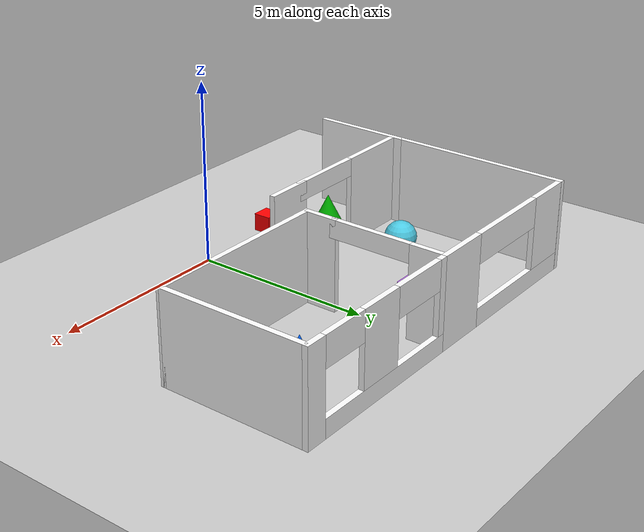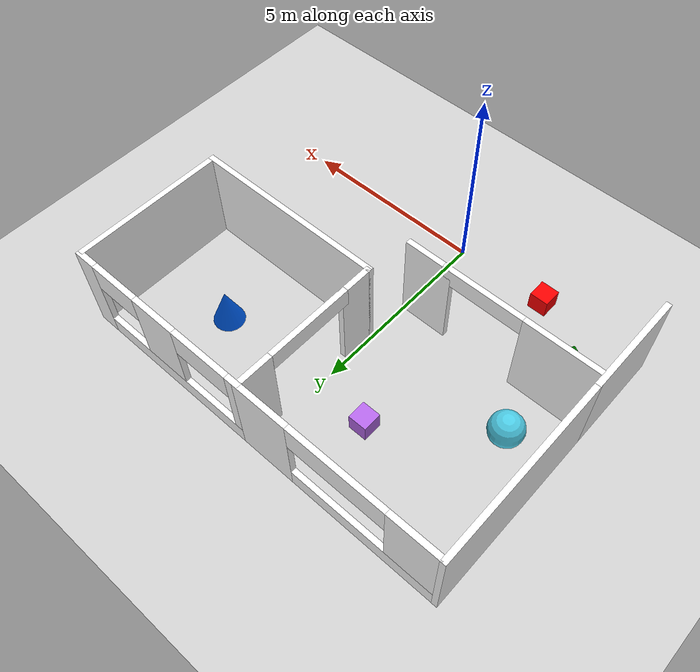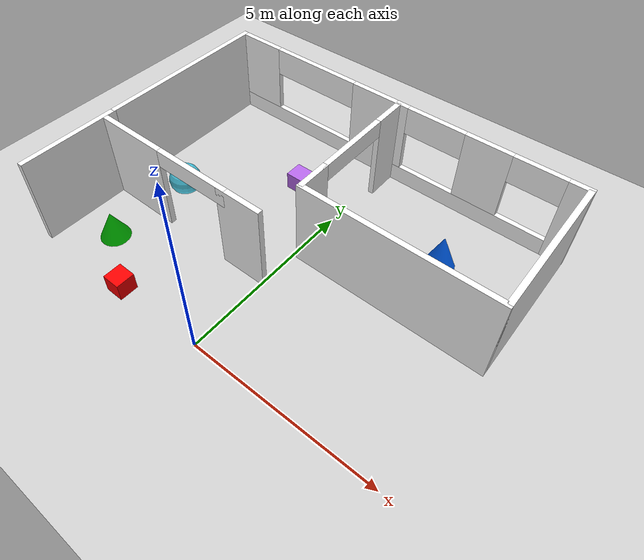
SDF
<sdf version="1.6">
 <world name="custom_world">
  <include><uri>https://fuel.gazebosim.org/1.0/OpenRobotics/models/Ground Plane</uri></include>
  <include><uri>https://fuel.gazebosim.org/1.0/OpenRobotics/models/Sun</uri></include>
  <model name="world_model">
   <pose>0 0 0 0 0 1.5708</pose>
   <link name="wall_1">
    <pose>5.07752 5.2688 0 0 -0 3.14159</pose>
    <visual name="wall_1_visual">
     <pose>0 0 1.25 0 -0 0</pose>
     <geometry><box><size>5 0.15 2.5</size></box></geometry>
     <material>
      <pbr><metal><albedo_map>textures/bricks.png</albedo_map></metal></pbr>
      <ambient>1 1 1 1</ambient>
      <diffuse>1 1 1 1</diffuse>
      <specular>0.2 0.2 0.2 1</specular>
      <emissive>0 0 0 1</emissive>
     </material>
    </visual>
    <collision name="wall_1_collision">
     <pose>0 0 1.25 0 -0 0</pose>
     <geometry><box><size>5 0.15 2.5</size></box></geometry>
     <surface>
      <friction>
       <ode><mu>1</mu><mu2>1</mu2><fdir1>0 0 0</fdir1><slip1>0</slip1><slip2>0</slip2></ode>
       <torsional>
        <coefficient>1</coefficient>
        <patch_radius>0</patch_radius>
        <surface_radius>0</surface_radius>
        <use_patch_radius>1</use_patch_radius>
        <ode><slip>0</slip></ode>
       </torsional>
      </friction>
      <bounce><restitution_coefficient>0</restitution_coefficient><threshold>1e+06</threshold></bounce>
      <contact>
       <collide_without_contact>0</collide_without_contact>
       <collide_without_contact_bitmask>1</collide_without_contact_bitmask>
       <collide_bitmask>1</collide_bitmask>
       <ode>
        <soft_cfm>0</soft_cfm>
        <soft_erp>0.2</soft_erp>
        <kp>1e+13</kp>
        <kd>1</kd>
        <max_vel>0.01</max_vel>
        <min_depth>0</min_depth>
       </ode>
       <bullet>
        <split_impulse>1</split_impulse>
        <split_impulse_penetration_threshold>-0.01</split_impulse_penetration_threshold>
        <soft_cfm>0</soft_cfm>
        <soft_erp>0.2</soft_erp>
        <kp>1e+13</kp>
        <kd>1</kd>
       </bullet>
      </contact>
     </surface>
    </collision>
   </link>
   <link name="wall_2">
    <pose>1.25 5.26876 0 0 -0 3.14159</pose>
    <visual name="wall_2_visual">
     <pose>0 0 1.25 0 -0 0</pose>
     <geometry><box><size>2.75 0.15 2.5</size></box></geometry>
     <material>
      <pbr><metal><albedo_map>textures/bricks.png</albedo_map></metal></pbr>
      <ambient>1 1 1 1</ambient>
      <diffuse>1 1 1 1</diffuse>
      <specular>0.2 0.2 0.2 1</specular>
      <emissive>0 0 0 1</emissive>
     </material>
    </visual>
    <collision name="wall_2_collision">
     <pose>0 0 1.25 0 -0 0</pose>
     <geometry><box><size>2.75 0.15 2.5</size></box></geometry>
     <surface>
      <friction>
       <ode><mu>1</mu><mu2>1</mu2><fdir1>0 0 0</fdir1><slip1>0</slip1><slip2>0</slip2></ode>
       <torsional>
        <coefficient>1</coefficient>
        <patch_radius>0</patch_radius>
        <surface_radius>0</surface_radius>
        <use_patch_radius>1</use_patch_radius>
        <ode><slip>0</slip></ode>
       </torsional>
      </friction>
      <bounce><restitution_coefficient>0</restitution_coefficient><threshold>1e+06</threshold></bounce>
      <contact>
       <collide_without_contact>0</collide_without_contact>
       <collide_without_contact_bitmask>1</collide_without_contact_bitmask>
       <collide_bitmask>1</collide_bitmask>
       <ode>
        <soft_cfm>0</soft_cfm>
        <soft_erp>0.2</soft_erp>
        <kp>1e+13</kp>
        <kd>1</kd>
        <max_vel>0.01</max_vel>
        <min_depth>0</min_depth>
       </ode>
       <bullet>
        <split_impulse>1</split_impulse>
        <split_impulse_penetration_threshold>-0.01</split_impulse_penetration_threshold>
        <soft_cfm>0</soft_cfm>
        <soft_erp>0.2</soft_erp>
        <kp>1e+13</kp>
        <kd>1</kd>
       </bullet>
      </contact>
     </surface>
    </collision>
   </link>
   <link name="wall_9">
    <pose>2.29994 2.5 0 0 0 -1.57091</pose>
    <visual name="wall_9_visual_1">
     <pose>-1.7 0 1.25 0 -0 0</pose>
     <geometry><box><size>2 0.15 2.5</size></box></geometry>
     <material>
      <pbr><metal><albedo_map>textures/bricks.png</albedo_map></metal></pbr>
      <ambient>1 1 1 1</ambient>
      <diffuse>1 1 1 1</diffuse>
      <specular>0.2 0.2 0.2 1</specular>
      <emissive>0 0 0 1</emissive>
     </material>
    </visual>
    <visual name="wall_9_visual_2">
     <pose>1.9 0 1.25 0 -0 0</pose>
     <geometry><box><size>1.3 0.15 2.5</size></box></geometry>
     <material>
      <pbr><metal><albedo_map>textures/bricks.png</albedo_map></metal></pbr>
      <ambient>1 1 1 1</ambient>
      <diffuse>1 1 1 1</diffuse>
      <specular>0.2 0.2 0.2 1</specular>
      <emissive>0 0 0 1</emissive>
     </material>
    </visual>
    <visual name="wall_9_visual_3">
     <pose>0.4 0 2.25 0 -0 0</pose>
     <geometry><box><size>2.2 0.15 0.5</size></box></geometry>
     <material>
      <pbr><metal><albedo_map>textures/bricks.png</albedo_map></metal></pbr>
      <ambient>1 1 1 1</ambient>
      <diffuse>1 1 1 1</diffuse>
      <specular>0.2 0.2 0.2 1</specular>
      <emissive>0 0 0 1</emissive>
     </material>
    </visual>
    <collision name="wall_9_collision_1">
     <pose>-1.7 0 1.25 0 -0 0</pose>
     <geometry><box><size>2 0.15 2.5</size></box></geometry>
     <surface>
      <friction>
       <ode><mu>1</mu><mu2>1</mu2><fdir1>0 0 0</fdir1><slip1>0</slip1><slip2>0</slip2></ode>
       <torsional>
        <coefficient>1</coefficient>
        <patch_radius>0</patch_radius>
        <surface_radius>0</surface_radius>
        <use_patch_radius>1</use_patch_radius>
        <ode><slip>0</slip></ode>
       </torsional>
      </friction>
      <bounce><restitution_coefficient>0</restitution_coefficient><threshold>1e+06</threshold></bounce>
      <contact>
       <collide_without_contact>0</collide_without_contact>
       <collide_without_contact_bitmask>1</collide_without_contact_bitmask>
       <collide_bitmask>1</collide_bitmask>
       <ode>
        <soft_cfm>0</soft_cfm>
        <soft_erp>0.2</soft_erp>
        <kp>1e+13</kp>
        <kd>1</kd>
        <max_vel>0.01</max_vel>
        <min_depth>0</min_depth>
       </ode>
       <bullet>
        <split_impulse>1</split_impulse>
        <split_impulse_penetration_threshold>-0.01</split_impulse_penetration_threshold>
        <soft_cfm>0</soft_cfm>
        <soft_erp>0.2</soft_erp>
        <kp>1e+13</kp>
        <kd>1</kd>
       </bullet>
      </contact>
     </surface>
    </collision>
    <collision name="wall_9_collision_2">
     <pose>1.9 0 1.25 0 -0 0</pose>
     <geometry><box><size>1.3 0.15 2.5</size></box></geometry>
     <surface>
      <friction>
       <ode><mu>1</mu><mu2>1</mu2><fdir1>0 0 0</fdir1><slip1>0</slip1><slip2>0</slip2></ode>
       <torsional>
        <coefficient>1</coefficient>
        <patch_radius>0</patch_radius>
        <surface_radius>0</surface_radius>
        <use_patch_radius>1</use_patch_radius>
        <ode><slip>0</slip></ode>
       </torsional>
      </friction>
      <bounce><restitution_coefficient>0</restitution_coefficient><threshold>1e+06</threshold></bounce>
      <contact>
       <collide_without_contact>0</collide_without_contact>
       <collide_without_contact_bitmask>1</collide_without_contact_bitmask>
       <collide_bitmask>1</collide_bitmask>
       <ode>
        <soft_cfm>0</soft_cfm>
        <soft_erp>0.2</soft_erp>
        <kp>1e+13</kp>
        <kd>1</kd>
        <max_vel>0.01</max_vel>
        <min_depth>0</min_depth>
       </ode>
       <bullet>
        <split_impulse>1</split_impulse>
        <split_impulse_penetration_threshold>-0.01</split_impulse_penetration_threshold>
        <soft_cfm>0</soft_cfm>
        <soft_erp>0.2</soft_erp>
        <kp>1e+13</kp>
        <kd>1</kd>
       </bullet>
      </contact>
     </surface>
    </collision>
    <collision name="wall_9_collision_3">
     <pose>0.4 0 2.25 0 -0 0</pose>
     <geometry><box><size>2.2 0.15 0.5</size></box></geometry>
     <surface>
      <friction>
       <ode><mu>1</mu><mu2>1</mu2><fdir1>0 0 0</fdir1><slip1>0</slip1><slip2>0</slip2></ode>
       <torsional>
        <coefficient>1</coefficient>
        <patch_radius>0</patch_radius>
        <surface_radius>0</surface_radius>
        <use_patch_radius>1</use_patch_radius>
        <ode><slip>0</slip></ode>
       </torsional>
      </friction>
      <bounce><restitution_coefficient>0</restitution_coefficient><threshold>1e+06</threshold></bounce>
      <contact>
       <collide_without_contact>0</collide_without_contact>
       <collide_without_contact_bitmask>1</collide_without_contact_bitmask>
       <collide_bitmask>1</collide_bitmask>
       <ode>
        <soft_cfm>0</soft_cfm>
        <soft_erp>0.2</soft_erp>
        <kp>1e+13</kp>
        <kd>1</kd>
        <max_vel>0.01</max_vel>
        <min_depth>0</min_depth>
       </ode>
       <bullet>
        <split_impulse>1</split_impulse>
        <split_impulse_penetration_threshold>-0.01</split_impulse_penetration_threshold>
        <soft_cfm>0</soft_cfm>
        <soft_erp>0.2</soft_erp>
        <kp>1e+13</kp>
        <kd>1</kd>
       </bullet>
      </contact>
     </surface>
    </collision>
   </link>
   <link name="wall_11">
    <pose>3.5 -2.725 0 0 0 -1.5708</pose>
    <visual name="wall_11_visual">
     <pose>0 0 1.25 0 -0 0</pose>
     <geometry><box><size>5.25 0.15 2.5</size></box></geometry>
     <material>
      <pbr><metal><albedo_map>textures/bricks.png</albedo_map></metal></pbr>
      <ambient>1 1 1 1</ambient>
      <diffuse>1 1 1 1</diffuse>
      <specular>0.2 0.2 0.2 1</specular>
      <emissive>0 0 0 1</emissive>
     </material>
    </visual>
    <collision name="wall_11_collision">
     <pose>0 0 1.25 0 -0 0</pose>
     <geometry><box><size>5.25 0.15 2.5</size></box></geometry>
     <surface>
      <friction>
       <ode><mu>1</mu><mu2>1</mu2><fdir1>0 0 0</fdir1><slip1>0</slip1><slip2>0</slip2></ode>
       <torsional>
        <coefficient>1</coefficient>
        <patch_radius>0</patch_radius>
        <surface_radius>0</surface_radius>
        <use_patch_radius>1</use_patch_radius>
        <ode><slip>0</slip></ode>
       </torsional>
      </friction>
      <bounce><restitution_coefficient>0</restitution_coefficient><threshold>1e+06</threshold></bounce>
      <contact>
       <collide_without_contact>0</collide_without_contact>
       <collide_without_contact_bitmask>1</collide_without_contact_bitmask>
       <collide_bitmask>1</collide_bitmask>
       <ode>
        <soft_cfm>0</soft_cfm>
        <soft_erp>0.2</soft_erp>
        <kp>1e+13</kp>
        <kd>1</kd>
        <max_vel>0.01</max_vel>
        <min_depth>0</min_depth>
       </ode>
       <bullet>
        <split_impulse>1</split_impulse>
        <split_impulse_penetration_threshold>-0.01</split_impulse_penetration_threshold>
        <soft_cfm>0</soft_cfm>
        <soft_erp>0.2</soft_erp>
        <kp>1e+13</kp>
        <kd>1</kd>
       </bullet>
      </contact>
     </surface>
    </collision>
   </link>
   <link name="wall_12">
    <pose>5.5 -5.275 0 0 -0 0</pose>
    <visual name="wall_12_visual">
     <pose>0 0 1.25 0 -0 0</pose>
     <geometry><box><size>4 0.15 2.5</size></box></geometry>
     <material>
      <pbr><metal><albedo_map>textures/bricks.png</albedo_map></metal></pbr>
      <ambient>1 1 1 1</ambient>
      <diffuse>1 1 1 1</diffuse>
      <specular>0.2 0.2 0.2 1</specular>
      <emissive>0 0 0 1</emissive>
     </material>
    </visual>
    <collision name="wall_12_collision">
     <pose>0 0 1.25 0 -0 0</pose>
     <geometry><box><size>4 0.15 2.5</size></box></geometry>
     <surface>
      <friction>
       <ode><mu>1</mu><mu2>1</mu2><fdir1>0 0 0</fdir1><slip1>0</slip1><slip2>0</slip2></ode>
       <torsional>
        <coefficient>1</coefficient>
        <patch_radius>0</patch_radius>
        <surface_radius>0</surface_radius>
        <use_patch_radius>1</use_patch_radius>
        <ode><slip>0</slip></ode>
       </torsional>
      </friction>
      <bounce><restitution_coefficient>0</restitution_coefficient><threshold>1e+06</threshold></bounce>
      <contact>
       <collide_without_contact>0</collide_without_contact>
       <collide_without_contact_bitmask>1</collide_without_contact_bitmask>
       <collide_bitmask>1</collide_bitmask>
       <ode>
        <soft_cfm>0</soft_cfm>
        <soft_erp>0.2</soft_erp>
        <kp>1e+13</kp>
        <kd>1</kd>
        <max_vel>0.01</max_vel>
        <min_depth>0</min_depth>
       </ode>
       <bullet>
        <split_impulse>1</split_impulse>
        <split_impulse_penetration_threshold>-0.01</split_impulse_penetration_threshold>
        <soft_cfm>0</soft_cfm>
        <soft_erp>0.2</soft_erp>
        <kp>1e+13</kp>
        <kd>1</kd>
       </bullet>
      </contact>
     </surface>
    </collision>
   </link>
   <link name="wall_13">
    <pose>7.5 -2.725 0 0 -0 1.5708</pose>
    <visual name="wall_13_visual_1">
     <pose>-2.32929 0 1.25 0 -0 0</pose>
     <geometry><box><size>0.591431 0.15 2.5</size></box></geometry>
     <material>
      <pbr><metal><albedo_map>textures/bricks.png</albedo_map></metal></pbr>
      <ambient>1 1 1 1</ambient>
      <diffuse>1 1 1 1</diffuse>
      <specular>0.2 0.2 0.2 1</specular>
      <emissive>0 0 0 1</emissive>
     </material>
    </visual>
    <visual name="wall_13_visual_2">
     <pose>0.295715 0 0.25 0 -0 0</pose>
     <geometry><box><size>4.65857 0.15 0.5</size></box></geometry>
     <material>
      <pbr><metal><albedo_map>textures/bricks.png</albedo_map></metal></pbr>
      <ambient>1 1 1 1</ambient>
      <diffuse>1 1 1 1</diffuse>
      <specular>0.2 0.2 0.2 1</specular>
      <emissive>0 0 0 1</emissive>
     </material>
    </visual>
    <visual name="wall_13_visual_3">
     <pose>-0.036959 0 1.5 0 -0 0</pose>
     <geometry><box><size>1.27522 0.15 2</size></box></geometry>
     <material>
      <pbr><metal><albedo_map>textures/bricks.png</albedo_map></metal></pbr>
      <ambient>1 1 1 1</ambient>
      <diffuse>1 1 1 1</diffuse>
      <specular>0.2 0.2 0.2 1</specular>
      <emissive>0 0 0 1</emissive>
     </material>
    </visual>
    <visual name="wall_13_visual_4">
     <pose>2.43783 0 1.5 0 -0 0</pose>
     <geometry><box><size>0.374348 0.15 2</size></box></geometry>
     <material>
      <pbr><metal><albedo_map>textures/bricks.png</albedo_map></metal></pbr>
      <ambient>1 1 1 1</ambient>
      <diffuse>1 1 1 1</diffuse>
      <specular>0.2 0.2 0.2 1</specular>
      <emissive>0 0 0 1</emissive>
     </material>
    </visual>
    <visual name="wall_13_visual_5">
     <pose>-1.35407 0 2.1 0 -0 0</pose>
     <geometry><box><size>1.359 0.15 0.8</size></box></geometry>
     <material>
      <pbr><metal><albedo_map>textures/bricks.png</albedo_map></metal></pbr>
      <ambient>1 1 1 1</ambient>
      <diffuse>1 1 1 1</diffuse>
      <specular>0.2 0.2 0.2 1</specular>
      <emissive>0 0 0 1</emissive>
     </material>
    </visual>
    <visual name="wall_13_visual_6">
     <pose>1.42565 0 2.1 0 -0 0</pose>
     <geometry><box><size>1.65 0.15 0.8</size></box></geometry>
     <material>
      <pbr><metal><albedo_map>textures/bricks.png</albedo_map></metal></pbr>
      <ambient>1 1 1 1</ambient>
      <diffuse>1 1 1 1</diffuse>
      <specular>0.2 0.2 0.2 1</specular>
      <emissive>0 0 0 1</emissive>
     </material>
    </visual>
    <collision name="wall_13_collision_1">
     <pose>-2.32929 0 1.25 0 -0 0</pose>
     <geometry><box><size>0.591431 0.15 2.5</size></box></geometry>
     <surface>
      <friction>
       <ode><mu>1</mu><mu2>1</mu2><fdir1>0 0 0</fdir1><slip1>0</slip1><slip2>0</slip2></ode>
       <torsional>
        <coefficient>1</coefficient>
        <patch_radius>0</patch_radius>
        <surface_radius>0</surface_radius>
        <use_patch_radius>1</use_patch_radius>
        <ode><slip>0</slip></ode>
       </torsional>
      </friction>
      <bounce><restitution_coefficient>0</restitution_coefficient><threshold>1e+06</threshold></bounce>
      <contact>
       <collide_without_contact>0</collide_without_contact>
       <collide_without_contact_bitmask>1</collide_without_contact_bitmask>
       <collide_bitmask>1</collide_bitmask>
       <ode>
        <soft_cfm>0</soft_cfm>
        <soft_erp>0.2</soft_erp>
        <kp>1e+13</kp>
        <kd>1</kd>
        <max_vel>0.01</max_vel>
        <min_depth>0</min_depth>
       </ode>
       <bullet>
        <split_impulse>1</split_impulse>
        <split_impulse_penetration_threshold>-0.01</split_impulse_penetration_threshold>
        <soft_cfm>0</soft_cfm>
        <soft_erp>0.2</soft_erp>
        <kp>1e+13</kp>
        <kd>1</kd>
       </bullet>
      </contact>
     </surface>
    </collision>
    <collision name="wall_13_collision_2">
     <pose>0.295715 0 0.25 0 -0 0</pose>
     <geometry><box><size>4.65857 0.15 0.5</size></box></geometry>
     <surface>
      <friction>
       <ode><mu>1</mu><mu2>1</mu2><fdir1>0 0 0</fdir1><slip1>0</slip1><slip2>0</slip2></ode>
       <torsional>
        <coefficient>1</coefficient>
        <patch_radius>0</patch_radius>
        <surface_radius>0</surface_radius>
        <use_patch_radius>1</use_patch_radius>
        <ode><slip>0</slip></ode>
       </torsional>
      </friction>
      <bounce><restitution_coefficient>0</restitution_coefficient><threshold>1e+06</threshold></bounce>
      <contact>
       <collide_without_contact>0</collide_without_contact>
       <collide_without_contact_bitmask>1</collide_without_contact_bitmask>
       <collide_bitmask>1</collide_bitmask>
       <ode>
        <soft_cfm>0</soft_cfm>
        <soft_erp>0.2</soft_erp>
        <kp>1e+13</kp>
        <kd>1</kd>
        <max_vel>0.01</max_vel>
        <min_depth>0</min_depth>
       </ode>
       <bullet>
        <split_impulse>1</split_impulse>
        <split_impulse_penetration_threshold>-0.01</split_impulse_penetration_threshold>
        <soft_cfm>0</soft_cfm>
        <soft_erp>0.2</soft_erp>
        <kp>1e+13</kp>
        <kd>1</kd>
       </bullet>
      </contact>
     </surface>
    </collision>
    <collision name="wall_13_collision_3">
     <pose>-0.036959 0 1.5 0 -0 0</pose>
     <geometry><box><size>1.27522 0.15 2</size></box></geometry>
     <surface>
      <friction>
       <ode><mu>1</mu><mu2>1</mu2><fdir1>0 0 0</fdir1><slip1>0</slip1><slip2>0</slip2></ode>
       <torsional>
        <coefficient>1</coefficient>
        <patch_radius>0</patch_radius>
        <surface_radius>0</surface_radius>
        <use_patch_radius>1</use_patch_radius>
        <ode><slip>0</slip></ode>
       </torsional>
      </friction>
      <bounce><restitution_coefficient>0</restitution_coefficient><threshold>1e+06</threshold></bounce>
      <contact>
       <collide_without_contact>0</collide_without_contact>
       <collide_without_contact_bitmask>1</collide_without_contact_bitmask>
       <collide_bitmask>1</collide_bitmask>
       <ode>
        <soft_cfm>0</soft_cfm>
        <soft_erp>0.2</soft_erp>
        <kp>1e+13</kp>
        <kd>1</kd>
        <max_vel>0.01</max_vel>
        <min_depth>0</min_depth>
       </ode>
       <bullet>
        <split_impulse>1</split_impulse>
        <split_impulse_penetration_threshold>-0.01</split_impulse_penetration_threshold>
        <soft_cfm>0</soft_cfm>
        <soft_erp>0.2</soft_erp>
        <kp>1e+13</kp>
        <kd>1</kd>
       </bullet>
      </contact>
     </surface>
    </collision>
    <collision name="wall_13_collision_4">
     <pose>2.43783 0 1.5 0 -0 0</pose>
     <geometry><box><size>0.374348 0.15 2</size></box></geometry>
     <surface>
      <friction>
       <ode><mu>1</mu><mu2>1</mu2><fdir1>0 0 0</fdir1><slip1>0</slip1><slip2>0</slip2></ode>
       <torsional>
        <coefficient>1</coefficient>
        <patch_radius>0</patch_radius>
        <surface_radius>0</surface_radius>
        <use_patch_radius>1</use_patch_radius>
        <ode><slip>0</slip></ode>
       </torsional>
      </friction>
      <bounce><restitution_coefficient>0</restitution_coefficient><threshold>1e+06</threshold></bounce>
      <contact>
       <collide_without_contact>0</collide_without_contact>
       <collide_without_contact_bitmask>1</collide_without_contact_bitmask>
       <collide_bitmask>1</collide_bitmask>
       <ode>
        <soft_cfm>0</soft_cfm>
        <soft_erp>0.2</soft_erp>
        <kp>1e+13</kp>
        <kd>1</kd>
        <max_vel>0.01</max_vel>
        <min_depth>0</min_depth>
       </ode>
       <bullet>
        <split_impulse>1</split_impulse>
        <split_impulse_penetration_threshold>-0.01</split_impulse_penetration_threshold>
        <soft_cfm>0</soft_cfm>
        <soft_erp>0.2</soft_erp>
        <kp>1e+13</kp>
        <kd>1</kd>
       </bullet>
      </contact>
     </surface>
    </collision>
    <collision name="wall_13_collision_5">
     <pose>-1.35407 0 2.1 0 -0 0</pose>
     <geometry><box><size>1.359 0.15 0.8</size></box></geometry>
     <surface>
      <friction>
       <ode><mu>1</mu><mu2>1</mu2><fdir1>0 0 0</fdir1><slip1>0</slip1><slip2>0</slip2></ode>
       <torsional>
        <coefficient>1</coefficient>
        <patch_radius>0</patch_radius>
        <surface_radius>0</surface_radius>
        <use_patch_radius>1</use_patch_radius>
        <ode><slip>0</slip></ode>
       </torsional>
      </friction>
      <bounce><restitution_coefficient>0</restitution_coefficient><threshold>1e+06</threshold></bounce>
      <contact>
       <collide_without_contact>0</collide_without_contact>
       <collide_without_contact_bitmask>1</collide_without_contact_bitmask>
       <collide_bitmask>1</collide_bitmask>
       <ode>
        <soft_cfm>0</soft_cfm>
        <soft_erp>0.2</soft_erp>
        <kp>1e+13</kp>
        <kd>1</kd>
        <max_vel>0.01</max_vel>
        <min_depth>0</min_depth>
       </ode>
       <bullet>
        <split_impulse>1</split_impulse>
        <split_impulse_penetration_threshold>-0.01</split_impulse_penetration_threshold>
        <soft_cfm>0</soft_cfm>
        <soft_erp>0.2</soft_erp>
        <kp>1e+13</kp>
        <kd>1</kd>
       </bullet>
      </contact>
     </surface>
    </collision>
    <collision name="wall_13_collision_6">
     <pose>1.42565 0 2.1 0 -0 0</pose>
     <geometry><box><size>1.65 0.15 0.8</size></box></geometry>
     <surface>
      <friction>
       <ode><mu>1</mu><mu2>1</mu2><fdir1>0 0 0</fdir1><slip1>0</slip1><slip2>0</slip2></ode>
       <torsional>
        <coefficient>1</coefficient>
        <patch_radius>0</patch_radius>
        <surface_radius>0</surface_radius>
        <use_patch_radius>1</use_patch_radius>
        <ode><slip>0</slip></ode>
       </torsional>
      </friction>
      <bounce><restitution_coefficient>0</restitution_coefficient><threshold>1e+06</threshold></bounce>
      <contact>
       <collide_without_contact>0</collide_without_contact>
       <collide_without_contact_bitmask>1</collide_without_contact_bitmask>
       <collide_bitmask>1</collide_bitmask>
       <ode>
        <soft_cfm>0</soft_cfm>
        <soft_erp>0.2</soft_erp>
        <kp>1e+13</kp>
        <kd>1</kd>
        <max_vel>0.01</max_vel>
        <min_depth>0</min_depth>
       </ode>
       <bullet>
        <split_impulse>1</split_impulse>
        <split_impulse_penetration_threshold>-0.01</split_impulse_penetration_threshold>
        <soft_cfm>0</soft_cfm>
        <soft_erp>0.2</soft_erp>
        <kp>1e+13</kp>
        <kd>1</kd>
       </bullet>
      </contact>
     </surface>
    </collision>
   </link>
   <link name="wall_14">
    <pose>7.5 2.5 0 0 -0 1.5708</pose>
    <visual name="wall_14_visual_1">
     <pose>-1.99826 0 1.25 0 -0 0</pose>
     <geometry><box><size>1.50348 0.15 2.5</size></box></geometry>
     <material>
      <pbr><metal><albedo_map>textures/bricks.png</albedo_map></metal></pbr>
      <ambient>1 1 1 1</ambient>
      <diffuse>1 1 1 1</diffuse>
      <specular>0.2 0.2 0.2 1</specular>
      <emissive>0 0 0 1</emissive>
     </material>
    </visual>
    <visual name="wall_14_visual_2">
     <pose>0.75174 0 0.25 0 -0 0</pose>
     <geometry><box><size>3.99652 0.15 0.5</size></box></geometry>
     <material>
      <pbr><metal><albedo_map>textures/bricks.png</albedo_map></metal></pbr>
      <ambient>1 1 1 1</ambient>
      <diffuse>1 1 1 1</diffuse>
      <specular>0.2 0.2 0.2 1</specular>
      <emissive>0 0 0 1</emissive>
     </material>
    </visual>
    <visual name="wall_14_visual_3">
     <pose>2.06924 0 1.5 0 -0 0</pose>
     <geometry><box><size>1.36152 0.15 2</size></box></geometry>
     <material>
      <pbr><metal><albedo_map>textures/bricks.png</albedo_map></metal></pbr>
      <ambient>1 1 1 1</ambient>
      <diffuse>1 1 1 1</diffuse>
      <specular>0.2 0.2 0.2 1</specular>
      <emissive>0 0 0 1</emissive>
     </material>
    </visual>
    <visual name="wall_14_visual_4">
     <pose>0.070981 0 2.1 0 -0 0</pose>
     <geometry><box><size>2.635 0.15 0.8</size></box></geometry>
     <material>
      <pbr><metal><albedo_map>textures/bricks.png</albedo_map></metal></pbr>
      <ambient>1 1 1 1</ambient>
      <diffuse>1 1 1 1</diffuse>
      <specular>0.2 0.2 0.2 1</specular>
      <emissive>0 0 0 1</emissive>
     </material>
    </visual>
    <collision name="wall_14_collision_1">
     <pose>-1.99826 0 1.25 0 -0 0</pose>
     <geometry><box><size>1.50348 0.15 2.5</size></box></geometry>
     <surface>
      <friction>
       <ode><mu>1</mu><mu2>1</mu2><fdir1>0 0 0</fdir1><slip1>0</slip1><slip2>0</slip2></ode>
       <torsional>
        <coefficient>1</coefficient>
        <patch_radius>0</patch_radius>
        <surface_radius>0</surface_radius>
        <use_patch_radius>1</use_patch_radius>
        <ode><slip>0</slip></ode>
       </torsional>
      </friction>
      <bounce><restitution_coefficient>0</restitution_coefficient><threshold>1e+06</threshold></bounce>
      <contact>
       <collide_without_contact>0</collide_without_contact>
       <collide_without_contact_bitmask>1</collide_without_contact_bitmask>
       <collide_bitmask>1</collide_bitmask>
       <ode>
        <soft_cfm>0</soft_cfm>
        <soft_erp>0.2</soft_erp>
        <kp>1e+13</kp>
        <kd>1</kd>
        <max_vel>0.01</max_vel>
        <min_depth>0</min_depth>
       </ode>
       <bullet>
        <split_impulse>1</split_impulse>
        <split_impulse_penetration_threshold>-0.01</split_impulse_penetration_threshold>
        <soft_cfm>0</soft_cfm>
        <soft_erp>0.2</soft_erp>
        <kp>1e+13</kp>
        <kd>1</kd>
       </bullet>
      </contact>
     </surface>
    </collision>
    <collision name="wall_14_collision_2">
     <pose>0.75174 0 0.25 0 -0 0</pose>
     <geometry><box><size>3.99652 0.15 0.5</size></box></geometry>
     <surface>
      <friction>
       <ode><mu>1</mu><mu2>1</mu2><fdir1>0 0 0</fdir1><slip1>0</slip1><slip2>0</slip2></ode>
       <torsional>
        <coefficient>1</coefficient>
        <patch_radius>0</patch_radius>
        <surface_radius>0</surface_radius>
        <use_patch_radius>1</use_patch_radius>
        <ode><slip>0</slip></ode>
       </torsional>
      </friction>
      <bounce><restitution_coefficient>0</restitution_coefficient><threshold>1e+06</threshold></bounce>
      <contact>
       <collide_without_contact>0</collide_without_contact>
       <collide_without_contact_bitmask>1</collide_without_contact_bitmask>
       <collide_bitmask>1</collide_bitmask>
       <ode>
        <soft_cfm>0</soft_cfm>
        <soft_erp>0.2</soft_erp>
        <kp>1e+13</kp>
        <kd>1</kd>
        <max_vel>0.01</max_vel>
        <min_depth>0</min_depth>
       </ode>
       <bullet>
        <split_impulse>1</split_impulse>
        <split_impulse_penetration_threshold>-0.01</split_impulse_penetration_threshold>
        <soft_cfm>0</soft_cfm>
        <soft_erp>0.2</soft_erp>
        <kp>1e+13</kp>
        <kd>1</kd>
       </bullet>
      </contact>
     </surface>
    </collision>
    <collision name="wall_14_collision_3">
     <pose>2.06924 0 1.5 0 -0 0</pose>
     <geometry><box><size>1.36152 0.15 2</size></box></geometry>
     <surface>
      <friction>
       <ode><mu>1</mu><mu2>1</mu2><fdir1>0 0 0</fdir1><slip1>0</slip1><slip2>0</slip2></ode>
       <torsional>
        <coefficient>1</coefficient>
        <patch_radius>0</patch_radius>
        <surface_radius>0</surface_radius>
        <use_patch_radius>1</use_patch_radius>
        <ode><slip>0</slip></ode>
       </torsional>
      </friction>
      <bounce><restitution_coefficient>0</restitution_coefficient><threshold>1e+06</threshold></bounce>
      <contact>
       <collide_without_contact>0</collide_without_contact>
       <collide_without_contact_bitmask>1</collide_without_contact_bitmask>
       <collide_bitmask>1</collide_bitmask>
       <ode>
        <soft_cfm>0</soft_cfm>
        <soft_erp>0.2</soft_erp>
        <kp>1e+13</kp>
        <kd>1</kd>
        <max_vel>0.01</max_vel>
        <min_depth>0</min_depth>
       </ode>
       <bullet>
        <split_impulse>1</split_impulse>
        <split_impulse_penetration_threshold>-0.01</split_impulse_penetration_threshold>
        <soft_cfm>0</soft_cfm>
        <soft_erp>0.2</soft_erp>
        <kp>1e+13</kp>
        <kd>1</kd>
       </bullet>
      </contact>
     </surface>
    </collision>
    <collision name="wall_14_collision_4">
     <pose>0.070981 0 2.1 0 -0 0</pose>
     <geometry><box><size>2.635 0.15 0.8</size></box></geometry>
     <surface>
      <friction>
       <ode><mu>1</mu><mu2>1</mu2><fdir1>0 0 0</fdir1><slip1>0</slip1><slip2>0</slip2></ode>
       <torsional>
        <coefficient>1</coefficient>
        <patch_radius>0</patch_radius>
        <surface_radius>0</surface_radius>
        <use_patch_radius>1</use_patch_radius>
        <ode><slip>0</slip></ode>
       </torsional>
      </friction>
      <bounce><restitution_coefficient>0</restitution_coefficient><threshold>1e+06</threshold></bounce>
      <contact>
       <collide_without_contact>0</collide_without_contact>
       <collide_without_contact_bitmask>1</collide_without_contact_bitmask>
       <collide_bitmask>1</collide_bitmask>
       <ode>
        <soft_cfm>0</soft_cfm>
        <soft_erp>0.2</soft_erp>
        <kp>1e+13</kp>
        <kd>1</kd>
        <max_vel>0.01</max_vel>
        <min_depth>0</min_depth>
       </ode>
       <bullet>
        <split_impulse>1</split_impulse>
        <split_impulse_penetration_threshold>-0.01</split_impulse_penetration_threshold>
        <soft_cfm>0</soft_cfm>
        <soft_erp>0.2</soft_erp>
        <kp>1e+13</kp>
        <kd>1</kd>
       </bullet>
      </contact>
     </surface>
    </collision>
   </link>
   <link name="wall_15">
    <pose>5.8 -0.175 0 0 -0 0</pose>
    <visual name="wall_15_visual_1">
     <pose>-1.85 0 1.25 0 -0 0</pose>
     <geometry><box><size>0.944471 0.15 2.5</size></box></geometry>
     <material>
      <pbr><metal><albedo_map>textures/bricks.png</albedo_map></metal></pbr>
      <ambient>1 1 1 1</ambient>
      <diffuse>1 1 1 1</diffuse>
      <specular>0.2 0.2 0.2 1</specular>
      <emissive>0 0 0 1</emissive>
     </material>
    </visual>
    <visual name="wall_15_visual_2">
     <pose>1.2 0 1.25 0 -0 0</pose>
     <geometry><box><size>0.905529 0.15 2.5</size></box></geometry>
     <material>
      <pbr><metal><albedo_map>textures/bricks.png</albedo_map></metal></pbr>
      <ambient>1 1 1 1</ambient>
      <diffuse>1 1 1 1</diffuse>
      <specular>0.2 0.2 0.2 1</specular>
      <emissive>0 0 0 1</emissive>
     </material>
    </visual>
    <visual name="wall_15_visual_3">
     <pose>-0.4 0 2.25 0 -0 0</pose>
     <geometry><box><size>2.3 0.15 0.5</size></box></geometry>
     <material>
      <pbr><metal><albedo_map>textures/bricks.png</albedo_map></metal></pbr>
      <ambient>1 1 1 1</ambient>
      <diffuse>1 1 1 1</diffuse>
      <specular>0.2 0.2 0.2 1</specular>
      <emissive>0 0 0 1</emissive>
     </material>
    </visual>
    <collision name="wall_15_collision_1">
     <pose>-1.85 0 1.25 0 -0 0</pose>
     <geometry><box><size>0.944471 0.15 2.5</size></box></geometry>
     <surface>
      <friction>
       <ode><mu>1</mu><mu2>1</mu2><fdir1>0 0 0</fdir1><slip1>0</slip1><slip2>0</slip2></ode>
       <torsional>
        <coefficient>1</coefficient>
        <patch_radius>0</patch_radius>
        <surface_radius>0</surface_radius>
        <use_patch_radius>1</use_patch_radius>
        <ode><slip>0</slip></ode>
       </torsional>
      </friction>
      <bounce><restitution_coefficient>0</restitution_coefficient><threshold>1e+06</threshold></bounce>
      <contact>
       <collide_without_contact>0</collide_without_contact>
       <collide_without_contact_bitmask>1</collide_without_contact_bitmask>
       <collide_bitmask>1</collide_bitmask>
       <ode>
        <soft_cfm>0</soft_cfm>
        <soft_erp>0.2</soft_erp>
        <kp>1e+13</kp>
        <kd>1</kd>
        <max_vel>0.01</max_vel>
        <min_depth>0</min_depth>
       </ode>
       <bullet>
        <split_impulse>1</split_impulse>
        <split_impulse_penetration_threshold>-0.01</split_impulse_penetration_threshold>
        <soft_cfm>0</soft_cfm>
        <soft_erp>0.2</soft_erp>
        <kp>1e+13</kp>
        <kd>1</kd>
       </bullet>
      </contact>
     </surface>
    </collision>
    <collision name="wall_15_collision_2">
     <pose>1.2 0 1.25 0 -0 0</pose>
     <geometry><box><size>0.905529 0.15 2.5</size></box></geometry>
     <surface>
      <friction>
       <ode><mu>1</mu><mu2>1</mu2><fdir1>0 0 0</fdir1><slip1>0</slip1><slip2>0</slip2></ode>
       <torsional>
        <coefficient>1</coefficient>
        <patch_radius>0</patch_radius>
        <surface_radius>0</surface_radius>
        <use_patch_radius>1</use_patch_radius>
        <ode><slip>0</slip></ode>
       </torsional>
      </friction>
      <bounce><restitution_coefficient>0</restitution_coefficient><threshold>1e+06</threshold></bounce>
      <contact>
       <collide_without_contact>0</collide_without_contact>
       <collide_without_contact_bitmask>1</collide_without_contact_bitmask>
       <collide_bitmask>1</collide_bitmask>
       <ode>
        <soft_cfm>0</soft_cfm>
        <soft_erp>0.2</soft_erp>
        <kp>1e+13</kp>
        <kd>1</kd>
        <max_vel>0.01</max_vel>
        <min_depth>0</min_depth>
       </ode>
       <bullet>
        <split_impulse>1</split_impulse>
        <split_impulse_penetration_threshold>-0.01</split_impulse_penetration_threshold>
        <soft_cfm>0</soft_cfm>
        <soft_erp>0.2</soft_erp>
        <kp>1e+13</kp>
        <kd>1</kd>
       </bullet>
      </contact>
     </surface>
    </collision>
    <collision name="wall_15_collision_3">
     <pose>-0.4 0 2.25 0 -0 0</pose>
     <geometry><box><size>2.3 0.15 0.5</size></box></geometry>
     <surface>
      <friction>
       <ode><mu>1</mu><mu2>1</mu2><fdir1>0 0 0</fdir1><slip1>0</slip1><slip2>0</slip2></ode>
       <torsional>
        <coefficient>1</coefficient>
        <patch_radius>0</patch_radius>
        <surface_radius>0</surface_radius>
        <use_patch_radius>1</use_patch_radius>
        <ode><slip>0</slip></ode>
       </torsional>
      </friction>
      <bounce><restitution_coefficient>0</restitution_coefficient><threshold>1e+06</threshold></bounce>
      <contact>
       <collide_without_contact>0</collide_without_contact>
       <collide_without_contact_bitmask>1</collide_without_contact_bitmask>
       <collide_bitmask>1</collide_bitmask>
       <ode>
        <soft_cfm>0</soft_cfm>
        <soft_erp>0.2</soft_erp>
        <kp>1e+13</kp>
        <kd>1</kd>
        <max_vel>0.01</max_vel>
        <min_depth>0</min_depth>
       </ode>
       <bullet>
        <split_impulse>1</split_impulse>
        <split_impulse_penetration_threshold>-0.01</split_impulse_penetration_threshold>
        <soft_cfm>0</soft_cfm>
        <soft_erp>0.2</soft_erp>
        <kp>1e+13</kp>
        <kd>1</kd>
       </bullet>
      </contact>
     </surface>
    </collision>
   </link>
   <model name="box1">
    <pose>0 2.5 0.25 0 0 0</pose>
    <link name="box_link">
     <inertial>
      <inertia><ixx>0.16666</ixx><ixy>0</ixy><ixz>0</ixz><iyy>0.16666</iyy><iyz>0</iyz><izz>0.16666</izz></inertia>
      <mass>1</mass>
     </inertial>
     <collision name="box_collision"><geometry><box><size>0.5 0.5 0.5</size></box></geometry></collision>
     <visual name="box_visual">
      <geometry><box><size>0.5 0.5 0.5</size></box></geometry>
      <material><ambient>1 0 0 1</ambient><diffuse>1 0 0 1</diffuse><specular>1 1 1 1</specular></material>
     </visual>
    </link>
    <static>false</static>
   </model>
   <model name="box3">
    <pose>5.5 1.5 0.25 0 0 0</pose>
    <link name="box_link">
     <inertial>
      <inertia><ixx>0.16666</ixx><ixy>0</ixy><ixz>0</ixz><iyy>0.16666</iyy><iyz>0</iyz><izz>0.16666</izz></inertia>
      <mass>1</mass>
     </inertial>
     <collision name="box_collision"><geometry><box><size>0.5 0.5 0.5</size></box></geometry></collision>
     <visual name="box_visual">
      <geometry><box><size>0.5 0.5 0.5</size></box></geometry>
      <material>
       <ambient>0.4 0.2 0.5 1</ambient>
       <diffuse>0.7 0.4 0.9 1</diffuse>
       <specular>0.9 0.6 1 1</specular>
      </material>
     </visual>
    </link>
    <static>false</static>
   </model>
   <model name="sphere2">
    <pose>3.5 4 0.225 0 0 0</pose>
    <link name="sphere_link">
     <inertial>
      <inertia>
       <ixx>0.10000000000000001</ixx>
       <ixy>0</ixy>
       <ixz>0</ixz>
       <iyy>0.10000000000000001</iyy>
       <iyz>0</iyz>
       <izz>0.10000000000000001</izz>
      </inertia>
      <mass>1</mass>
     </inertial>
     <collision name="sphere_collision"><geometry><sphere><radius>0.45</radius></sphere></geometry></collision>
     <visual name="sphere_visual">
      <geometry><sphere><radius>0.45</radius></sphere></geometry>
      <material>
       <ambient>0.2 0.5 0.5 1</ambient>
       <diffuse>0.3 0.8 0.9 1</diffuse>
       <specular>0.5 0.9 1 1</specular>
      </material>
     </visual>
    </link>
    <static>false</static>
   </model>
   <model name="cone1">
    <pose>1 4 0.4 0 0 0</pose>
    <link name="cone_link">
     <inertial>
      <inertia>
       <ixx>0.074999999999999997</ixx>
       <ixy>0</ixy>
       <ixz>0</ixz>
       <iyy>0.074999999999999997</iyy>
       <iyz>0</iyz>
       <izz>0.074999999999999997</izz>
      </inertia>
      <mass>1</mass>
     </inertial>
     <collision name="cone_collision">
      <geometry><cone><radius>0.4</radius><length>0.8</length></cone></geometry>
     </collision>
     <visual name="cone_visual">
      <geometry><cone><radius>0.4</radius><length>0.8</length></cone></geometry>
      <material><ambient>0 0.3 0 1</ambient><diffuse>0 0.7 0 1</diffuse><specular>0.5 1 0.5 1</specular></material>
     </visual>
    </link>
    <static>false</static>
   </model>
   <model name="cone2">
    <pose>5.5 -3 0.5 0 0 0</pose>
    <link name="cone_link">
     <inertial>
      <inertia>
       <ixx>0.074999999999999997</ixx>
       <ixy>0</ixy>
       <ixz>0</ixz>
       <iyy>0.074999999999999997</iyy>
       <iyz>0</iyz>
       <izz>0.074999999999999997</izz>
      </inertia>
      <mass>1</mass>
     </inertial>
     <collision name="cone_collision">
      <geometry><cone><radius>0.4</radius><length>1</length></cone></geometry>
     </collision>
     <visual name="cone_visual">
      <geometry><cone><radius>0.4</radius><length>1</length></cone></geometry>
      <material>
       <ambient>0 0.2 0.8 1</ambient>
       <diffuse>0 0.4 1 1</diffuse>
       <specular>0.3 0.6 1 1</specular>
      </material>
     </visual>
    </link>
    <static>false</static>
   </model>
  </model>
 </world>
</sdf>
